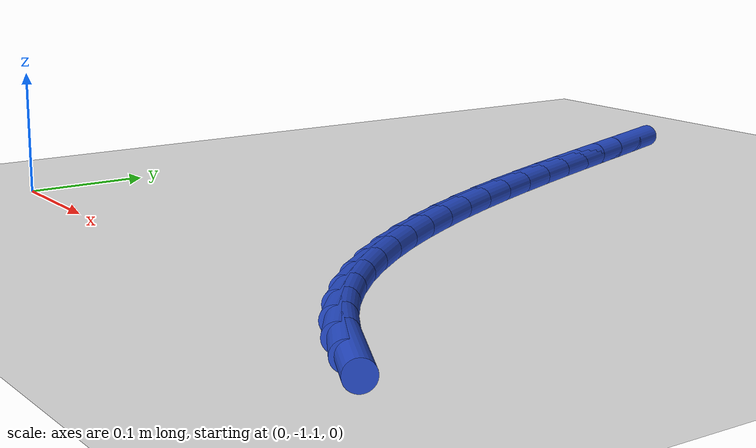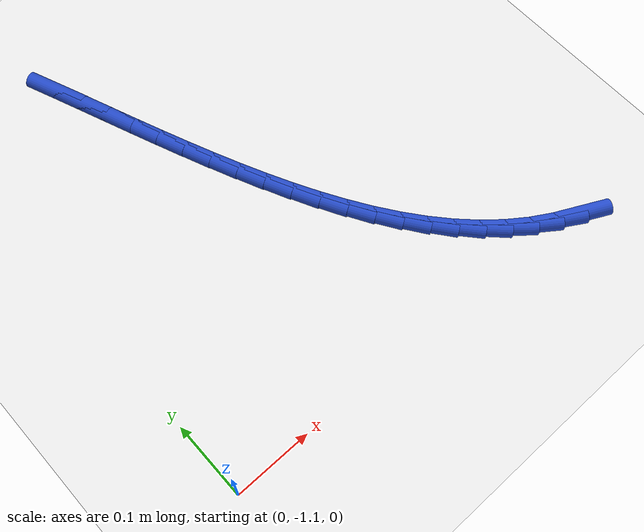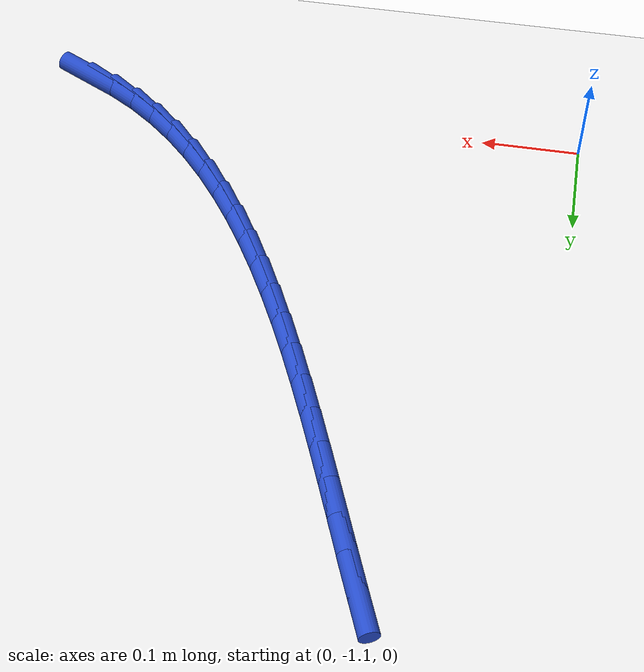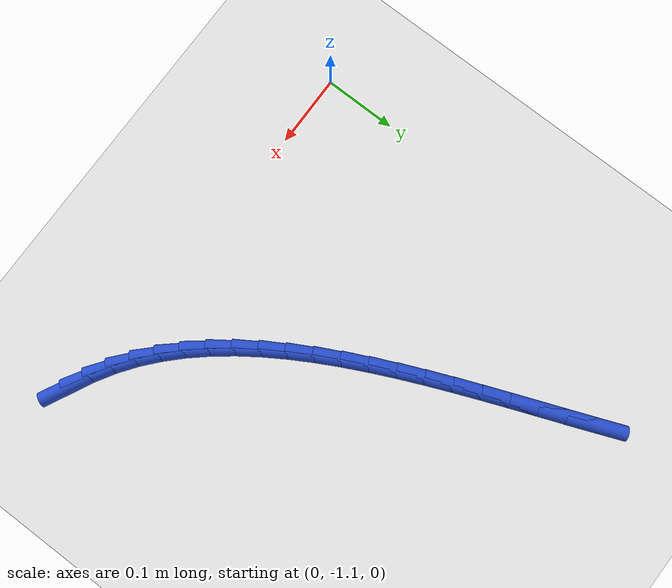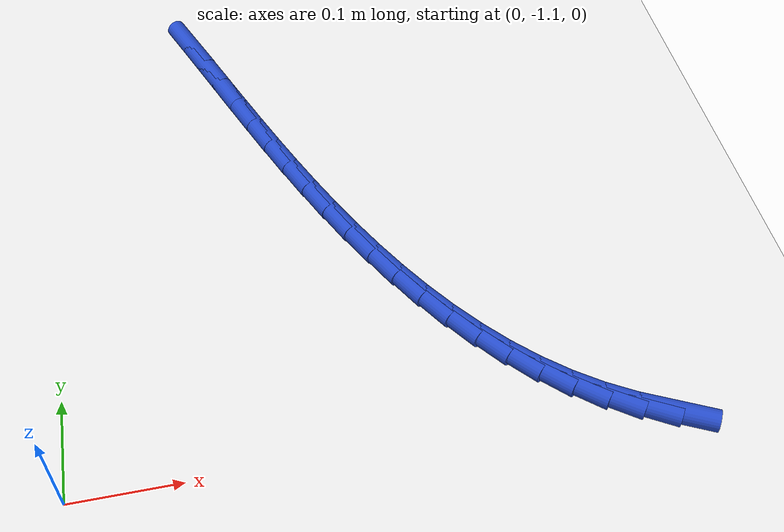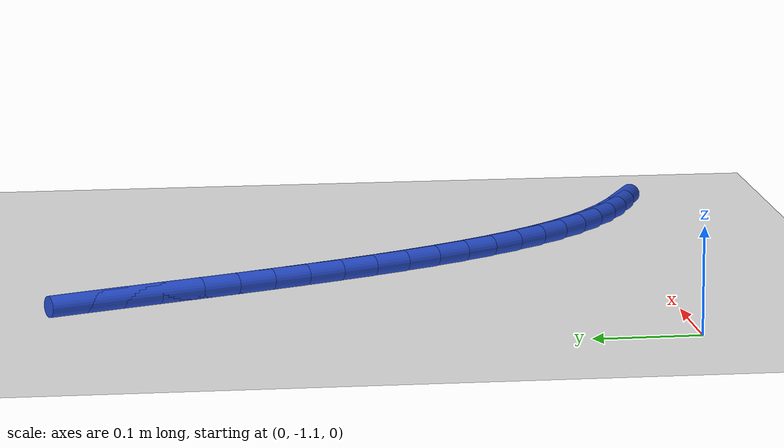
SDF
<sdf version="1.6">
 <world name="default">
  <model name="ground_plane">
   <static>1</static>
   <link name="link">
    <collision name="collision">
     <geometry><plane><normal>0 0 1</normal><size>100 100</size></plane></geometry>
     <surface><friction><ode><mu>100</mu><mu2>50</mu2></ode></friction></surface>
    </collision>
    <visual name="visual">
     <cast_shadows>0</cast_shadows>
     <geometry><plane><normal>0 0 1</normal><size>100 100</size></plane></geometry>
     <material>
      <script><uri>file://media/materials/scripts/gazebo.material</uri><name>Gazebo/WhiteGlow</name></script>
     </material>
    </visual>
   </link>
  </model>
  <model name="line">
   <link name="link_213">
    <pose>0.5198356613296614 -1.1222164970219641 0.01 0 1.57 -0.4626752812641202</pose>
    <collision name="collision">
     <geometry><cylinder><radius>0.01</radius><length>0.08</length></cylinder></geometry>
    </collision>
    <visual name="visual">
     <material>
      <script><name>Gazebo/Blue</name><uri>file://media/materials/scripts/gazebo.material</uri></script>
     </material>
     <geometry><cylinder><radius>0.01</radius><length>0.08</length></cylinder></geometry>
    </visual>
   </link>
   <link name="link_214">
    <pose>0.4919292976173961 -1.108297216359314 0.01 0 1.57 -0.5411474125041844</pose>
    <collision name="collision">
     <geometry><cylinder><radius>0.01</radius><length>0.08</length></cylinder></geometry>
    </collision>
    <visual name="visual">
     <material>
      <script><name>Gazebo/Blue</name><uri>file://media/materials/scripts/gazebo.material</uri></script>
     </material>
     <geometry><cylinder><radius>0.01</radius><length>0.08</length></cylinder></geometry>
    </visual>
   </link>
   <link name="link_215">
    <pose>0.4656447020890198 -1.092500426953294 0.01 0 1.57 -0.6286021642870948</pose>
    <collision name="collision">
     <geometry><cylinder><radius>0.01</radius><length>0.08</length></cylinder></geometry>
    </collision>
    <visual name="visual">
     <material>
      <script><name>Gazebo/Blue</name><uri>file://media/materials/scripts/gazebo.material</uri></script>
     </material>
     <geometry><cylinder><radius>0.01</radius><length>0.08</length></cylinder></geometry>
    </visual>
   </link>
   <link name="link_216">
    <pose>0.4407886575684184 -1.074430679855952 0.01 0 1.57 -0.7100336108847014</pose>
    <collision name="collision">
     <geometry><cylinder><radius>0.01</radius><length>0.08</length></cylinder></geometry>
    </collision>
    <visual name="visual">
     <material>
      <script><name>Gazebo/Blue</name><uri>file://media/materials/scripts/gazebo.material</uri></script>
     </material>
     <geometry><cylinder><radius>0.01</radius><length>0.08</length></cylinder></geometry>
    </visual>
   </link>
   <link name="link_217">
    <pose>0.41727412151710513 -1.0542178877883728 0.01 0 1.57 -0.7842976700165721</pose>
    <collision name="collision">
     <geometry><cylinder><radius>0.01</radius><length>0.08</length></cylinder></geometry>
    </collision>
    <visual name="visual">
     <material>
      <script><name>Gazebo/Blue</name><uri>file://media/materials/scripts/gazebo.material</uri></script>
     </material>
     <geometry><cylinder><radius>0.01</radius><length>0.08</length></cylinder></geometry>
    </visual>
   </link>
   <link name="link_218">
    <pose>0.39501779656019076 -1.0320104948784137 0.01 0 1.57 -0.8511532569704884</pose>
    <collision name="collision">
     <geometry><cylinder><radius>0.01</radius><length>0.08</length></cylinder></geometry>
    </collision>
    <visual name="visual">
     <material>
      <script><name>Gazebo/Blue</name><uri>file://media/materials/scripts/gazebo.material</uri></script>
     </material>
     <geometry><cylinder><radius>0.01</radius><length>0.08</length></cylinder></geometry>
    </visual>
   </link>
   <link name="link_219">
    <pose>0.3739363853227859 -1.0079569452539299 0.01 0 1.57 -0.9106966361397896</pose>
    <collision name="collision">
     <geometry><cylinder><radius>0.01</radius><length>0.08</length></cylinder></geometry>
    </collision>
    <visual name="visual">
     <material>
      <script><name>Gazebo/Blue</name><uri>file://media/materials/scripts/gazebo.material</uri></script>
     </material>
     <geometry><cylinder><radius>0.01</radius><length>0.08</length></cylinder></geometry>
    </visual>
   </link>
   <link name="link_220">
    <pose>0.35394659043000143 -0.9822056830427777 0.01 0 1.57 -0.9632460916312899</pose>
    <collision name="collision">
     <geometry><cylinder><radius>0.01</radius><length>0.08</length></cylinder></geometry>
    </collision>
    <visual name="visual">
     <material>
      <script><name>Gazebo/Blue</name><uri>file://media/materials/scripts/gazebo.material</uri></script>
     </material>
     <geometry><cylinder><radius>0.01</radius><length>0.08</length></cylinder></geometry>
    </visual>
   </link>
   <link name="link_221">
    <pose>0.33496511450694805 -0.9549051523728129 0.01 0 1.57 -1.0092433471210105</pose>
    <collision name="collision">
     <geometry><cylinder><radius>0.01</radius><length>0.08</length></cylinder></geometry>
    </collision>
    <visual name="visual">
     <material>
      <script><name>Gazebo/Blue</name><uri>file://media/materials/scripts/gazebo.material</uri></script>
     </material>
     <geometry><cylinder><radius>0.01</radius><length>0.08</length></cylinder></geometry>
    </visual>
   </link>
   <link name="link_222">
    <pose>0.31690866017873665 -0.9262037973718922 0.01 0 1.57 -1.049179541443178</pose>
    <collision name="collision">
     <geometry><cylinder><radius>0.01</radius><length>0.08</length></cylinder></geometry>
    </collision>
    <visual name="visual">
     <material>
      <script><name>Gazebo/Blue</name><uri>file://media/materials/scripts/gazebo.material</uri></script>
     </material>
     <geometry><cylinder><radius>0.01</radius><length>0.08</length></cylinder></geometry>
    </visual>
   </link>
   <link name="link_223">
    <pose>0.29969393007047795 -0.8962500621678705 0.01 0 1.57 -1.083544900811312</pose>
    <collision name="collision">
     <geometry><cylinder><radius>0.01</radius><length>0.08</length></cylinder></geometry>
    </collision>
    <visual name="visual">
     <material>
      <script><name>Gazebo/Blue</name><uri>file://media/materials/scripts/gazebo.material</uri></script>
     </material>
     <geometry><cylinder><radius>0.01</radius><length>0.08</length></cylinder></geometry>
    </visual>
   </link>
   <link name="link_224">
    <pose>0.28323762680728287 -0.8651923908886047 0.01 0 1.57 -1.1127974455993268</pose>
    <collision name="collision">
     <geometry><cylinder><radius>0.01</radius><length>0.08</length></cylinder></geometry>
    </collision>
    <visual name="visual">
     <material>
      <script><name>Gazebo/Blue</name><uri>file://media/materials/scripts/gazebo.material</uri></script>
     </material>
     <geometry><cylinder><radius>0.01</radius><length>0.08</length></cylinder></geometry>
    </visual>
   </link>
   <link name="link_225">
    <pose>0.26745645301426185 -0.8331792276619505 0.01 0 1.57 -1.1373453359755585</pose>
    <collision name="collision">
     <geometry><cylinder><radius>0.01</radius><length>0.08</length></cylinder></geometry>
    </collision>
    <visual name="visual">
     <material>
      <script><name>Gazebo/Blue</name><uri>file://media/materials/scripts/gazebo.material</uri></script>
     </material>
     <geometry><cylinder><radius>0.01</radius><length>0.08</length></cylinder></geometry>
    </visual>
   </link>
   <link name="link_226">
    <pose>0.252267111316526 -0.8003590166157639 0.01 0 1.57 -1.1575381632025317</pose>
    <collision name="collision">
     <geometry><cylinder><radius>0.01</radius><length>0.08</length></cylinder></geometry>
    </collision>
    <visual name="visual">
     <material>
      <script><name>Gazebo/Blue</name><uri>file://media/materials/scripts/gazebo.material</uri></script>
     </material>
     <geometry><cylinder><radius>0.01</radius><length>0.08</length></cylinder></geometry>
    </visual>
   </link>
   <link name="link_227">
    <pose>0.23758630433918596 -0.7668802018779008 0.01 0 1.57 -1.1736636178913418</pose>
    <collision name="collision">
     <geometry><cylinder><radius>0.01</radius><length>0.08</length></cylinder></geometry>
    </collision>
    <visual name="visual">
     <material>
      <script><name>Gazebo/Blue</name><uri>file://media/materials/scripts/gazebo.material</uri></script>
     </material>
     <geometry><cylinder><radius>0.01</radius><length>0.08</length></cylinder></geometry>
    </visual>
   </link>
   <link name="link_228">
    <pose>0.2233307347073525 -0.7328912275762176 0.01 0 1.57 -1.1859470280141438</pose>
    <collision name="collision">
     <geometry><cylinder><radius>0.01</radius><length>0.08</length></cylinder></geometry>
    </collision>
    <visual name="visual">
     <material>
      <script><name>Gazebo/Blue</name><uri>file://media/materials/scripts/gazebo.material</uri></script>
     </material>
     <geometry><cylinder><radius>0.01</radius><length>0.08</length></cylinder></geometry>
    </visual>
   </link>
   <link name="link_229">
    <pose>0.2094171050461365 -0.6985405378385702 0.01 0 1.57 -1.1945520919869737</pose>
    <collision name="collision">
     <geometry><cylinder><radius>0.01</radius><length>0.08</length></cylinder></geometry>
    </collision>
    <visual name="visual">
     <material>
      <script><name>Gazebo/Blue</name><uri>file://media/materials/scripts/gazebo.material</uri></script>
     </material>
     <geometry><cylinder><radius>0.01</radius><length>0.08</length></cylinder></geometry>
    </visual>
   </link>
   <link name="link_230">
    <pose>0.19576211798064855 -0.663976576792814 0.01 0 1.57 -1.1995817225631835</pose>
    <collision name="collision">
     <geometry><cylinder><radius>0.01</radius><length>0.08</length></cylinder></geometry>
    </collision>
    <visual name="visual">
     <material>
      <script><name>Gazebo/Blue</name><uri>file://media/materials/scripts/gazebo.material</uri></script>
     </material>
     <geometry><cylinder><radius>0.01</radius><length>0.08</length></cylinder></geometry>
    </visual>
   </link>
   <link name="link_231">
    <pose>0.18228247613599957 -0.6293477885668057 0.01 0 1.57 -1.2010783095394841</pose>
    <collision name="collision">
     <geometry><cylinder><radius>0.01</radius><length>0.08</length></cylinder></geometry>
    </collision>
    <visual name="visual">
     <material>
      <script><name>Gazebo/Blue</name><uri>file://media/materials/scripts/gazebo.material</uri></script>
     </material>
     <geometry><cylinder><radius>0.01</radius><length>0.08</length></cylinder></geometry>
    </visual>
   </link>
   <link name="link_232">
    <pose>0.16889488213730033 -0.5948026172884011 0.01 0 1.57 -1.1990229592565291</pose>
    <collision name="collision">
     <geometry><cylinder><radius>0.01</radius><length>0.08</length></cylinder></geometry>
    </collision>
    <visual name="visual">
     <material>
      <script><name>Gazebo/Blue</name><uri>file://media/materials/scripts/gazebo.material</uri></script>
     </material>
     <geometry><cylinder><radius>0.01</radius><length>0.08</length></cylinder></geometry>
    </visual>
   </link>
   <link name="link_233">
    <pose>0.15551603860966157 -0.5604895070854563 0.01 0 1.57 -1.193333428268296</pose>
    <collision name="collision">
     <geometry><cylinder><radius>0.01</radius><length>0.08</length></cylinder></geometry>
    </collision>
    <visual name="visual">
     <material>
      <script><name>Gazebo/Blue</name><uri>file://media/materials/scripts/gazebo.material</uri></script>
     </material>
     <geometry><cylinder><radius>0.01</radius><length>0.08</length></cylinder></geometry>
    </visual>
   </link>
  </model>
 </world>
</sdf>
